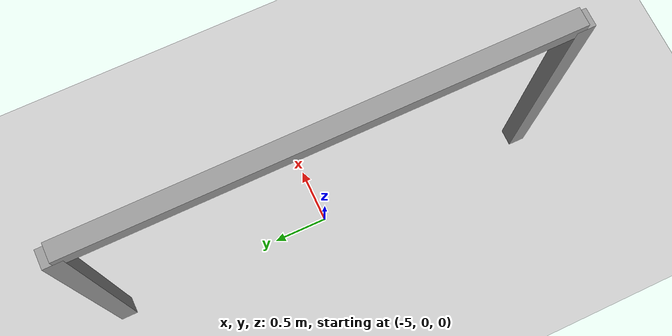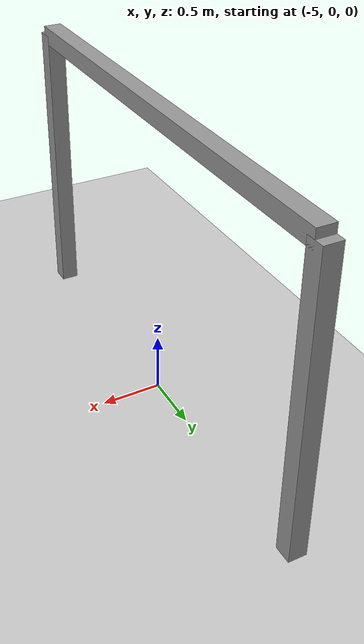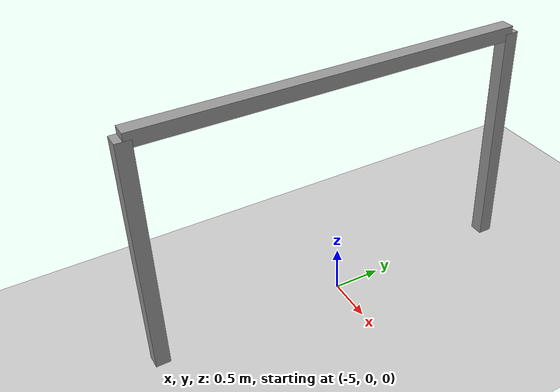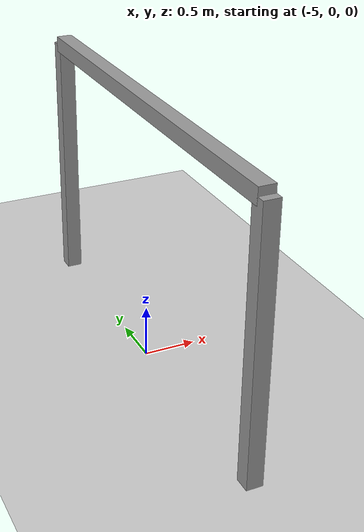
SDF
<?xml version="1.0" encoding="UTF-8"?>
<sdf version="1.6">
  <world name="default">
    <scene>
      <sky>
        <clouds>
          <speed>12</speed>
        </clouds>
      </sky>
    </scene>
    <!-- A global light source -->
    <include>
      <uri>model://sun</uri>
    </include>
    <!-- A ground plane -->
    <model name="ground">
      <link name="body">
        <collision name="geom">
          <geometry>
            <plane>
              <normal>0 0 1</normal>
              <size>10 10</size>
            </plane>
          </geometry>-->
          <surface>
            <friction>
              <ode>
                <mu>10000000.0</mu>
                <mu2>10000000.0</mu2>
              </ode>
            </friction>
            <contact>
              <ode>
                <kp>10000000.0</kp>
                <kd>1.0</kd>
                <min_depth>0.001</min_depth>
                <max_vel>0.1</max_vel>
              </ode>
            </contact>
          </surface>
        </collision>
        <visual name="visual">
          <cast_shadows>false</cast_shadows>
          <geometry>
            <plane>
              <normal>0 0 1</normal>
              <size>15 10</size>
            </plane>
          </geometry>
          <material>
            <script>
              <uri>file://media/materials/scripts/dancer_world.material</uri>
              <name>Gazebo/dancer_world</name>
            </script>
          </material>
        </visual>
      </link>
      <static>true</static>
    </model>
    <!-- ball goal -->
    <model name='ball_goal'>
      <pose frame=''>0 0 0 0 0 0</pose>
      <link name='column_left'>
        <collision name='column_left_Collision'>
          <geometry>
            <box>
              <size>0.15 0.15 2.5</size>
            </box>
          </geometry>
          <pose frame=''>0 0 1.25 0 0 0</pose>
        </collision>
        <visual name='column_left_Visual'>
          <pose frame=''>0 0 1.25 0 0 0</pose>
          <geometry>
            <box>
              <size>0.15 0.15 2.5</size>
            </box>
          </geometry>
          <material>
            <script>
              <uri>file://media/materials/scripts/dancer_world.material</uri>
              <name>Gazebo/Grey</name>
            </script>
            <ambient>1 1 1 1</ambient>
          </material>
          <meta>
            <layer>0</layer>
          </meta>
        </visual>
        <pose frame=''>-5 2 0 0 0 0</pose>
      </link>
      <link name='column_right'>
        <collision name='column_right_Collision'>
          <geometry>
            <box>
              <size>0.15 0.15 2.5</size>
            </box>
          </geometry>
          <pose frame=''>0 0 1.25 0 0 0</pose>
        </collision>
        <visual name='column_right_Visual'>
          <pose frame=''>0 0 1.25 0 0 0</pose>
          <geometry>
            <box>
              <size>0.15 0.15 2.5</size>
            </box>
          </geometry>
          <material>
            <script>
              <uri>file://media/materials/scripts/dancer_world.material</uri>
              <name>Gazebo/Grey</name>
            </script>
            <ambient>1 1 1 1</ambient>
          </material>
          <meta>
            <layer>0</layer>
          </meta>
        </visual>
        <pose frame=''>-5 -2 0 0 0 0</pose>
      </link>
      <link name='column_up'>
        <collision name='column_up_Collision'>
          <geometry>
            <box>
              <size>0.15 4 0.15</size>
            </box>
          </geometry>
          <pose frame=''>0 0 2.5 0 -0 0</pose>
        </collision>
        <visual name='column_up_Visual'>
          <pose frame=''>0 0 2.5 0 -0 0</pose>
          <geometry>
            <box>
              <size>0.15 4 0.15</size>
            </box>
          </geometry>
          <material>
            <script>
              <uri>file://media/materials/scripts/dancer_world.material</uri>
              <name>Gazebo/Grey</name>
            </script>
            <ambient>1 1 1 1</ambient>
          </material>
          <meta>
            <layer>0</layer>
          </meta>
        </visual>
        <pose frame=''>-5 0 0 0 0 0</pose>
      </link>
      <static>1</static>
    </model>
    <gravity>0 0 -98</gravity>
  </world>
</sdf>
